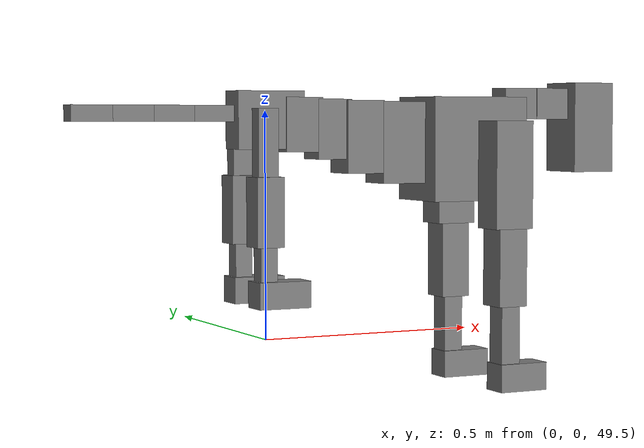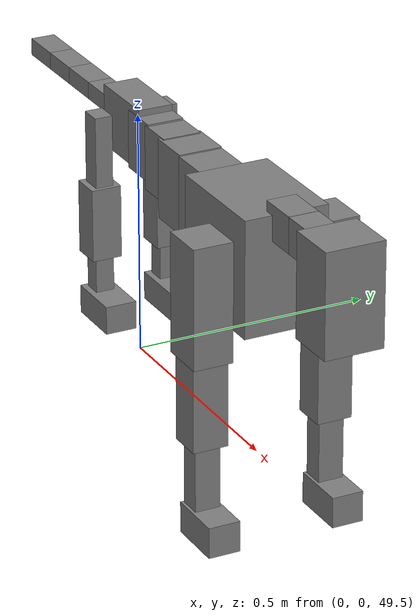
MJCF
<mujoco model="dog">

    <default>
        <joint armature="0.02" stiffness="1" damping="0.2" limited="true"/>
        <geom condim="3" friction="1 0.05 0.05" margin="0.01"/>
        <motor ctrllimited="true" ctrlrange="-1.0 1.0" forcelimited="true" gear="50"/>
    </default>

    <compiler inertiafromgeom="true" angle="radian"/>

    <option timestep="0.016" iterations="50" tolerance="1e-10" solver="Newton" jacobian="dense" cone="pyramidal"/>

    <size nconmax="20000" njmax="60000" nstack="5000000"/>
    <visual>
        <map force="0.1" zfar="30"/>
        <rgba haze="0.15 0.25 0.35 1"/>
        <quality shadowsize="2048"/>
        <global offwidth="800" offheight="800"/>
    </visual>

    <asset>
        <texture type="skybox" builtin="gradient" rgb1="0.3 0.5 0.7" rgb2="0 0 0" width="512" height="512"/>
        <texture name="texplane" type="2d" builtin="checker" rgb1=".2 .3 .4" rgb2=".1 0.15 0.2" width="512" height="512"
                 mark="cross" markrgb=".8 .8 .8"/>
        <texture name="texgeom" type="cube" builtin="flat" mark="cross" width="127" height="1278" rgb1="0.8 0.6 0.4"
                 rgb2="0.8 0.6 0.4" markrgb="1 1 1" random="0.01"/>

        <material name="matplane" reflectance="0.3" texture="texplane" texrepeat="1 1" texuniform="true"/>
        <material name="matgeom" texture="texgeom" texuniform="true" rgba="0.8 0.6 .4 1"/>
    </asset>

    <worldbody>
        <geom name="floor" pos="0 0 0" size="0 0 .25" type="plane" material="matplane" condim="3"/>

        <light directional="false" diffuse=".2 .2 .2" specular="0 0 0" pos="0 0 5" dir="0 0 -1" castshadow="false"/>
        <light mode="targetbodycom" target="torso" directional="false" diffuse=".8 .8 .8" specular="0.3 0.3 0.3"
               pos="0 0 4.0" dir="0 0 -1"/>

        <body name="root" pos="0 0 50">
            <freejoint name="root_1"/>
            <geom type="box" pos="0 0 -0.02" size="0.0774  0.0358  0.063" density="2030"/>

            <body name="spine1" pos="0.054 0 0">
                <joint name="spine1_y" axis="0 1 0" range="0 0.7" limited="true"/>
                <geom type="box" pos="0.02375 0 -0.03" size="0.04375  0.0375  0.05985" density="2030"/>

                <body name="spine2" pos="0.0612 0 0">
                    <joint name="spine2_y" axis="0 1 0" range="-0.15 0.15" limited="true"/>
                    <geom type="box" pos="0.03555  0  -0.04" size="0.04055  0.039  0.06615" density="2030"/>

                    <body name="spine3" pos="0.0730 0 0">
                        <joint name="spine3_y" axis="0 1 0" range="-0.15 0.15" limited="true"/>
                        <geom type="box" pos="0.03555  0  -0.057" size="0.04555  0.0445  0.081" density="2030"/>

                        <body name="spine4" pos="0.0780 0 0">
                            <joint name="spine4_y" axis="0 1 0" range="-0.15 0.15" limited="true"/>
                            <geom type="box" pos="0.05265  0  -0.07" size="0.05265  0.045  0.09135" density="2030"/>

                            <body name="torso" pos="0.1082 0 0">
                                <joint name="torso_y" axis="0 1 0" range="-0.15 0.15" limited="true"/>
                                <geom type="box" pos="0.11925  0  -0.085" size="0.11925  0.085  0.11745"
                                      density="2030"/>

                                <body name="neck1" pos="0.2160  0   0.0180">
                                    <joint name="neck1_y" axis="0 1 0" range="-1.2  -1" limited="true"/>
                                    <geom type="box" pos="0.0423  0  0" size="0.0423  0.03  0.036" density="2325"/>

                                    <body name="neck2" pos="0.0853  0  0">
                                        <joint name="neck2_y" axis="0 1 0" range="0.1  0" limited="true"/>
                                        <geom type="box" pos="0.0423  0  0" size="0.0423  0.03  0.036" density="2325"/>

                                        <body name="head" pos="0.0853  0  0">
                                            <joint name="head_y" axis="0 1 0" range="-0.3  -0.2" limited="true"/>
                                            <geom type="box" pos="0.0531  0  -0.055" size="0.0531  0.06  0.1044"
                                                  density="4030"/>

                                        </body>
                                    </body>
                                </body>

                                <body name="front_shoulder" pos="0.156  0   -0.0480">
                                    <joint name="front_shoulder_y" axis="0 1 0" range="-1 1.5" limited="true"/>
                                    <geom type="box" pos="0 0.13 -0.0943" size="0.0471  0.0403  0.1209" density="1158"/>
                                    <geom type="box" pos="0 -0.13 -0.0943" size="0.0471  0.0403  0.1209"
                                          density="1158"/>

                                    <body name="front_elbow" pos="0  0  -0.1886">
                                        <joint name="front_elbow_y" axis="0 1 0" range="-2 0" limited="true"/>
                                        <geom type="box" pos="0 0.13 -0.1005" size="0.0352  0.0360  0.1005"
                                              density="1081"/>
                                        <geom type="box" pos="0 -0.13 -0.1005" size="0.0352  0.0360  0.1005"
                                              density="1081"/>

                                        <body name="front_wrist" pos="0  0  -0.2009">
                                            <joint name="front_wrist_y" axis="0 1 0" range="-0.2 0" limited="true"/>
                                            <geom type="box" pos="0 0.13 -0.0725" size="0.0233  0.0259  0.0857"
                                                  density="1664"/>
                                            <geom type="box" pos="0 -0.13 -0.0725" size="0.0233  0.0259  0.0857"
                                                  density="1664"/>

                                            <body name="front_finger_end" pos="0  0  -0.1450">
                                                <joint name="front_finger_y" axis="0 1 0" range="-0.4 1"
                                                       limited="true"/>
                                                <geom type="box" pos="0.0322  0.13  -0.0165"
                                                      size="0.0590  0.0322  0.0315" density="1515"/>
                                                <geom type="box" pos="0.0322  -0.13  -0.0165"
                                                      size="0.0590  0.0322  0.0315" density="1515"/>

                                            </body>

                                        </body>
                                    </body>
                                </body>

                            </body>
                        </body>
                    </body>
                </body>
            </body>

            <body name="back_hip" pos="-0.03 0 -0.018">
                <joint name="back_hip_y" axis="0 1 0" range="-1.5 0.3" limited="true"/>
                <geom type="box" pos="0 0.07 -0.0694" size="0.0230  0.0180  0.0922" density="1154"/>
                <geom type="box" pos="0 -0.07 -0.0694" size="0.0230  0.0180  0.0922" density="1154"/>

                <body name="back_knee" pos="0  0  -0.1387">
                    <joint name="back_knee_y" axis="0 1 0" range="0 2.8" limited="true"/>
                    <geom type="box" pos="0 0.07 -0.0596" size="0.0312  0.0308  0.0751" density="1227"/>
                    <geom type="box" pos="0 -0.07 -0.0596" size="0.0312  0.0308  0.0751" density="1227"/>

                    <body name="back_ankle" pos="0  0  -0.1191">
                        <joint name="back_ankle_y" axis="0 1 0" range="-2.2 0" limited="true"/>
                        <geom type="box" pos="0 0.07 -0.0519" size="0.0192  0.0192  0.0631" density="1284"/>
                        <geom type="box" pos="0 -0.07 -0.0519" size="0.0192  0.0192  0.0631" density="1284"/>

                        <body name="back_toe_end" pos="0  0  -0.1038">
                            <joint name="back_toe_y" axis="0 1 0" range="-0.4 1" limited="true"/>
                            <geom type="box" pos="0.0323  0.07  -0.0140" size="0.0592  0.0323  0.0290" density="1515"/>
                            <geom type="box" pos="0.0323  -0.07  -0.0140" size="0.0592  0.0323  0.0290" density="1515"/>

                        </body>
                    </body>
                </body>
            </body>

            <body name="tail1" pos="-0.074 0 -0.006">
                <joint name="tail1_y" axis="0 1 0" range="-0.2 0.2" limited="true"/>
                <geom type="box" pos="-0.0536  0  0" size="0.045  0.025  0.0175" density="1587"/>

                <body name="tail2" pos="-0.09 0 0">
                    <joint name="tail2_y" axis="0 1 0" range="-0.2 0.2" limited="true"/>
                    <geom type="box" pos="-0.0536  0  0" size="0.045  0.025  0.0175" density="1587"/>

                    <body name="tail3" pos="-0.09 0 0">
                        <joint name="tail3_y" axis="0 1 0" range="-0.2 0.2" limited="true"/>
                        <geom type="box" pos="-0.0536  0  0" size="0.045  0.025  0.0175" density="1587"/>

                        <body name="tail4" pos="-0.09 0 0">
                            <joint name="tail4_y" axis="0 1 0" range="-0.2 0.2" limited="true"/>
                            <geom type="box" pos="-0.0536  0  0" size="0.045  0.025  0.0175" density="1587"/>

                        </body>
                    </body>
                </body>
            </body>
        </body>
    </worldbody>

    <actuator>
        <motor joint="spine1_y" forcerange="-150 150     "/>
        <motor joint="spine2_y" forcerange="-150 150     "/>
        <motor joint="spine3_y" forcerange="-150 150     "/>
        <motor joint="spine4_y" forcerange="-150 150     "/>
        <motor joint="torso_y" forcerange="-150 150     "/>
        <motor joint="neck1_y" forcerange="-100 100       "/>
        <motor joint="neck2_y" forcerange="-100 100       "/>
        <motor joint="head_y" forcerange="-150 150       "/>
        <motor joint="front_shoulder_y" forcerange="-173.49 195.04"/>
        <motor joint="front_elbow_y" forcerange="-186.14 175.77"/>
        <motor joint="front_wrist_y" forcerange="-73.13 134.32"/>
        <motor joint="front_finger_y" forcerange="-37.25 94.46"/>
        <motor joint="back_hip_y" forcerange="-227.30 212.75"/>
        <motor joint="back_knee_y" forcerange="-372.59 275.12"/>
        <motor joint="back_angle_y" forcerange="-66.24 141.57"/>
        <motor joint="back_toe_y" forcerange="-42.65 135.50"/>
        <motor joint="tail1_y" forcerange="-50 50     "/>
        <motor joint="tail2_y" forcerange="-50 50     "/>
        <motor joint="tail3_y" forcerange="-50 50     "/>
        <motor joint="tail4_y" forcerange="-50 50     "/>
    </actuator>
</mujoco>
